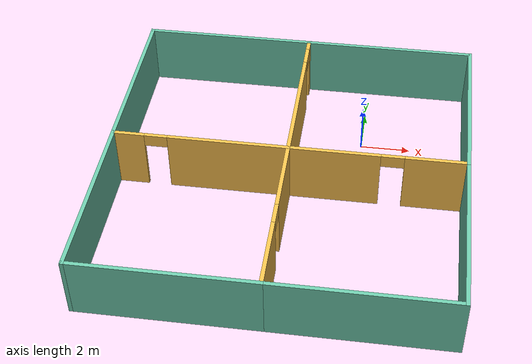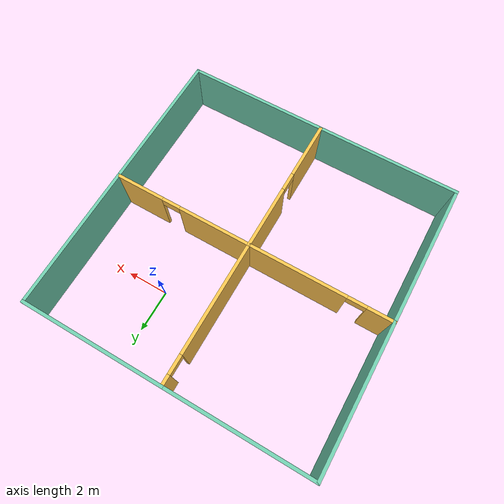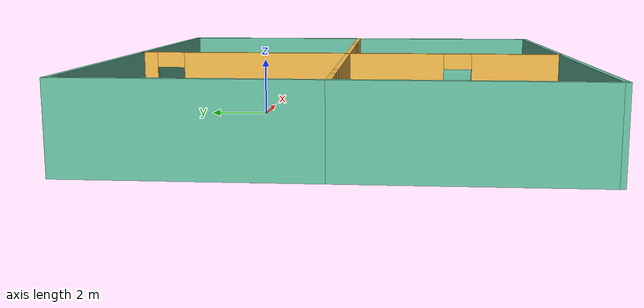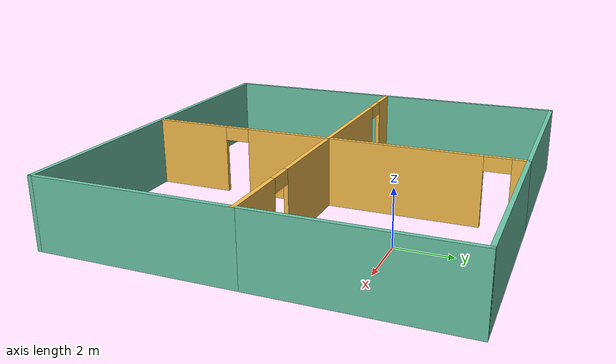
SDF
<?xml version='1.0'?>
<sdf version='1.7'>
  <model name='plane_5'>
    <pose>-2.65042 -3.20867 0 0 -0 0</pose>
    <link name='Wall_10'>
      <collision name='Wall_10_Collision'>
        <geometry>
          <box>
            <size>7 0.15 2.5</size>
          </box>
        </geometry>
        <pose>0 0 1.25 0 -0 0</pose>
      </collision>
      <visual name='Wall_10_Visual'>
        <pose>0 0 1.25 0 -0 0</pose>
        <geometry>
          <box>
            <size>7 0.15 2.5</size>
          </box>
        </geometry>
        <material>
          <script>
            <uri>file://media/materials/scripts/gazebo.material</uri>
            <name>Gazebo/Grey</name>
          </script>
          <ambient>0.435294 0.796078 0.67451 1</ambient>
        </material>
        <meta>
          <layer>0</layer>
        </meta>
      </visual>
      <pose>3.425 -6.85 0 0 -0 3.14159</pose>
    </link>
    <link name='Wall_12'>
      <collision name='Wall_12_Collision'>
        <geometry>
          <box>
            <size>7 0.15 2.5</size>
          </box>
        </geometry>
        <pose>0 0 1.25 0 -0 0</pose>
      </collision>
      <visual name='Wall_12_Visual'>
        <pose>0 0 1.25 0 -0 0</pose>
        <geometry>
          <box>
            <size>7 0.15 2.5</size>
          </box>
        </geometry>
        <material>
          <script>
            <uri>file://media/materials/scripts/gazebo.material</uri>
            <name>Gazebo/Grey</name>
          </script>
          <ambient>0.435294 0.796078 0.67451 1</ambient>
        </material>
        <meta>
          <layer>0</layer>
        </meta>
      </visual>
      <pose>-6.85 3.425 0 0 -0 1.5708</pose>
    </link>
    <link name='Wall_13'>
      <collision name='Wall_13_Collision'>
        <geometry>
          <box>
            <size>7 0.15 2.5</size>
          </box>
        </geometry>
        <pose>0 0 1.25 0 -0 0</pose>
      </collision>
      <visual name='Wall_13_Visual'>
        <pose>0 0 1.25 0 -0 0</pose>
        <geometry>
          <box>
            <size>7 0.15 2.5</size>
          </box>
        </geometry>
        <material>
          <script>
            <uri>file://media/materials/scripts/gazebo.material</uri>
            <name>Gazebo/Grey</name>
          </script>
          <ambient>0.435294 0.796078 0.67451 1</ambient>
        </material>
        <meta>
          <layer>0</layer>
        </meta>
      </visual>
      <pose>-3.425 6.85 0 0 -0 0</pose>
    </link>
    <link name='Wall_14'>
      <pose>0 3.425 0 0 -0 -1.5708</pose>
      <visual name='Wall_14_Visual_0'>
        <pose>-3.20236 0 1.25 0 -0 0</pose>
        <geometry>
          <box>
            <size>0.595276 0.15 2.5</size>
          </box>
        </geometry>
        <material>
          <script>
            <uri>file://media/materials/scripts/gazebo.material</uri>
            <name>Gazebo/Grey</name>
          </script>
          <ambient>1 0.764706 0.305882 1</ambient>
        </material>
        <meta>
          <layer>0</layer>
        </meta>
      </visual>
      <collision name='Wall_14_Collision_0'>
        <geometry>
          <box>
            <size>0.595276 0.15 2.5</size>
          </box>
        </geometry>
        <pose>-3.20236 0 1.25 0 -0 0</pose>
      </collision>
      <visual name='Wall_14_Visual_1'>
        <pose>0.747638 0 1.25 0 -0 0</pose>
        <geometry>
          <box>
            <size>5.50472 0.15 2.5</size>
          </box>
        </geometry>
        <material>
          <script>
            <uri>file://media/materials/scripts/gazebo.material</uri>
            <name>Gazebo/Grey</name>
          </script>
          <ambient>1 0.764706 0.305882 1</ambient>
        </material>
        <meta>
          <layer>0</layer>
        </meta>
      </visual>
      <collision name='Wall_14_Collision_1'>
        <geometry>
          <box>
            <size>5.50472 0.15 2.5</size>
          </box>
        </geometry>
        <pose>0.747638 0 1.25 0 -0 0</pose>
      </collision>
      <visual name='Wall_14_Visual_2'>
        <pose>-2.45472 0 2.25 0 -0 0</pose>
        <geometry>
          <box>
            <size>0.9 0.15 0.5</size>
          </box>
        </geometry>
        <material>
          <script>
            <uri>file://media/materials/scripts/gazebo.material</uri>
            <name>Gazebo/Grey</name>
          </script>
          <ambient>1 0.764706 0.305882 1</ambient>
        </material>
        <meta>
          <layer>0</layer>
        </meta>
      </visual>
      <collision name='Wall_14_Collision_2'>
        <geometry>
          <box>
            <size>0.9 0.15 0.5</size>
          </box>
        </geometry>
        <pose>-2.45472 0 2.25 0 -0 0</pose>
      </collision>
    </link>
    <link name='Wall_16'>
      <collision name='Wall_16_Collision'>
        <geometry>
          <box>
            <size>7 0.15 2.5</size>
          </box>
        </geometry>
        <pose>0 0 1.25 0 -0 0</pose>
      </collision>
      <visual name='Wall_16_Visual'>
        <pose>0 0 1.25 0 -0 0</pose>
        <geometry>
          <box>
            <size>7 0.15 2.5</size>
          </box>
        </geometry>
        <material>
          <script>
            <uri>file://media/materials/scripts/gazebo.material</uri>
            <name>Gazebo/Grey</name>
          </script>
          <ambient>0.435294 0.796078 0.67451 1</ambient>
        </material>
        <meta>
          <layer>0</layer>
        </meta>
      </visual>
      <pose>3.425 6.85 0 0 -0 0</pose>
    </link>
    <link name='Wall_17'>
      <collision name='Wall_17_Collision'>
        <geometry>
          <box>
            <size>7 0.15 2.5</size>
          </box>
        </geometry>
        <pose>0 0 1.25 0 -0 0</pose>
      </collision>
      <visual name='Wall_17_Visual'>
        <pose>0 0 1.25 0 -0 0</pose>
        <geometry>
          <box>
            <size>7 0.15 2.5</size>
          </box>
        </geometry>
        <material>
          <script>
            <uri>file://media/materials/scripts/gazebo.material</uri>
            <name>Gazebo/Grey</name>
          </script>
          <ambient>0.435294 0.796078 0.67451 1</ambient>
        </material>
        <meta>
          <layer>0</layer>
        </meta>
      </visual>
      <pose>6.85 3.425 0 0 -0 -1.5708</pose>
    </link>
    <link name='Wall_3'>
      <collision name='Wall_3_Collision'>
        <geometry>
          <box>
            <size>7 0.15 2.5</size>
          </box>
        </geometry>
        <pose>0 0 1.25 0 -0 0</pose>
      </collision>
      <visual name='Wall_3_Visual'>
        <pose>0 0 1.25 0 -0 0</pose>
        <geometry>
          <box>
            <size>7 0.15 2.5</size>
          </box>
        </geometry>
        <material>
          <script>
            <uri>file://media/materials/scripts/gazebo.material</uri>
            <name>Gazebo/Grey</name>
          </script>
          <ambient>0.435294 0.796078 0.67451 1</ambient>
        </material>
        <meta>
          <layer>0</layer>
        </meta>
      </visual>
      <pose>-6.85 -3.425 0 0 -0 1.5708</pose>
    </link>
    <link name='Wall_4'>
      <pose>-3.425 -0 0 0 -0 0</pose>
      <visual name='Wall_4_Visual_0'>
        <pose>-2.84341 0 1.25 0 -0 0</pose>
        <geometry>
          <box>
            <size>1.31317 0.15 2.5</size>
          </box>
        </geometry>
        <material>
          <script>
            <uri>file://media/materials/scripts/gazebo.material</uri>
            <name>Gazebo/Grey</name>
          </script>
          <ambient>1 0.764706 0.305882 1</ambient>
        </material>
        <meta>
          <layer>0</layer>
        </meta>
      </visual>
      <collision name='Wall_4_Collision_0'>
        <geometry>
          <box>
            <size>1.31317 0.15 2.5</size>
          </box>
        </geometry>
        <pose>-2.84341 0 1.25 0 -0 0</pose>
      </collision>
      <visual name='Wall_4_Visual_1'>
        <pose>1.10659 0 1.25 0 -0 0</pose>
        <geometry>
          <box>
            <size>4.78683 0.15 2.5</size>
          </box>
        </geometry>
        <material>
          <script>
            <uri>file://media/materials/scripts/gazebo.material</uri>
            <name>Gazebo/Grey</name>
          </script>
          <ambient>1 0.764706 0.305882 1</ambient>
        </material>
        <meta>
          <layer>0</layer>
        </meta>
      </visual>
      <collision name='Wall_4_Collision_1'>
        <geometry>
          <box>
            <size>4.78683 0.15 2.5</size>
          </box>
        </geometry>
        <pose>1.10659 0 1.25 0 -0 0</pose>
      </collision>
      <visual name='Wall_4_Visual_2'>
        <pose>-1.73683 0 2.25 0 -0 0</pose>
        <geometry>
          <box>
            <size>0.9 0.15 0.5</size>
          </box>
        </geometry>
        <material>
          <script>
            <uri>file://media/materials/scripts/gazebo.material</uri>
            <name>Gazebo/Grey</name>
          </script>
          <ambient>1 0.764706 0.305882 1</ambient>
        </material>
        <meta>
          <layer>0</layer>
        </meta>
      </visual>
      <collision name='Wall_4_Collision_2'>
        <geometry>
          <box>
            <size>0.9 0.15 0.5</size>
          </box>
        </geometry>
        <pose>-1.73683 0 2.25 0 -0 0</pose>
      </collision>
    </link>
    <link name='Wall_5'>
      <pose>0 -3.425 0 0 -0 -1.5708</pose>
      <visual name='Wall_5_Visual_0'>
        <pose>-1.90912 0 1.25 0 -0 0</pose>
        <geometry>
          <box>
            <size>3.18176 0.15 2.5</size>
          </box>
        </geometry>
        <material>
          <script>
            <uri>file://media/materials/scripts/gazebo.material</uri>
            <name>Gazebo/Grey</name>
          </script>
          <ambient>1 0.764706 0.305882 1</ambient>
        </material>
        <meta>
          <layer>0</layer>
        </meta>
      </visual>
      <collision name='Wall_5_Collision_0'>
        <geometry>
          <box>
            <size>3.18176 0.15 2.5</size>
          </box>
        </geometry>
        <pose>-1.90912 0 1.25 0 -0 0</pose>
      </collision>
      <visual name='Wall_5_Visual_1'>
        <pose>2.04088 0 1.25 0 -0 0</pose>
        <geometry>
          <box>
            <size>2.91824 0.15 2.5</size>
          </box>
        </geometry>
        <material>
          <script>
            <uri>file://media/materials/scripts/gazebo.material</uri>
            <name>Gazebo/Grey</name>
          </script>
          <ambient>1 0.764706 0.305882 1</ambient>
        </material>
        <meta>
          <layer>0</layer>
        </meta>
      </visual>
      <collision name='Wall_5_Collision_1'>
        <geometry>
          <box>
            <size>2.91824 0.15 2.5</size>
          </box>
        </geometry>
        <pose>2.04088 0 1.25 0 -0 0</pose>
      </collision>
      <visual name='Wall_5_Visual_2'>
        <pose>0.131759 0 2.25 0 -0 0</pose>
        <geometry>
          <box>
            <size>0.9 0.15 0.5</size>
          </box>
        </geometry>
        <material>
          <script>
            <uri>file://media/materials/scripts/gazebo.material</uri>
            <name>Gazebo/Grey</name>
          </script>
          <ambient>1 0.764706 0.305882 1</ambient>
        </material>
        <meta>
          <layer>0</layer>
        </meta>
      </visual>
      <collision name='Wall_5_Collision_2'>
        <geometry>
          <box>
            <size>0.9 0.15 0.5</size>
          </box>
        </geometry>
        <pose>0.131759 0 2.25 0 -0 0</pose>
      </collision>
    </link>
    <link name='Wall_6'>
      <collision name='Wall_6_Collision'>
        <geometry>
          <box>
            <size>7 0.15 2.5</size>
          </box>
        </geometry>
        <pose>0 0 1.25 0 -0 0</pose>
      </collision>
      <visual name='Wall_6_Visual'>
        <pose>0 0 1.25 0 -0 0</pose>
        <geometry>
          <box>
            <size>7 0.15 2.5</size>
          </box>
        </geometry>
        <material>
          <script>
            <uri>file://media/materials/scripts/gazebo.material</uri>
            <name>Gazebo/Grey</name>
          </script>
          <ambient>0.435294 0.796078 0.67451 1</ambient>
        </material>
        <meta>
          <layer>0</layer>
        </meta>
      </visual>
      <pose>-3.425 -6.85 0 0 -0 3.14159</pose>
    </link>
    <link name='Wall_8'>
      <pose>3.425 -0 0 0 -0 0</pose>
      <visual name='Wall_8_Visual_0'>
        <pose>-1.69058 0 1.25 0 -0 0</pose>
        <geometry>
          <box>
            <size>3.61884 0.15 2.5</size>
          </box>
        </geometry>
        <material>
          <script>
            <uri>file://media/materials/scripts/gazebo.material</uri>
            <name>Gazebo/Grey</name>
          </script>
          <ambient>1 0.764706 0.305882 1</ambient>
        </material>
        <meta>
          <layer>0</layer>
        </meta>
      </visual>
      <collision name='Wall_8_Collision_0'>
        <geometry>
          <box>
            <size>3.61884 0.15 2.5</size>
          </box>
        </geometry>
        <pose>-1.69058 0 1.25 0 -0 0</pose>
      </collision>
      <visual name='Wall_8_Visual_1'>
        <pose>2.25942 0 1.25 0 -0 0</pose>
        <geometry>
          <box>
            <size>2.48116 0.15 2.5</size>
          </box>
        </geometry>
        <material>
          <script>
            <uri>file://media/materials/scripts/gazebo.material</uri>
            <name>Gazebo/Grey</name>
          </script>
          <ambient>1 0.764706 0.305882 1</ambient>
        </material>
        <meta>
          <layer>0</layer>
        </meta>
      </visual>
      <collision name='Wall_8_Collision_1'>
        <geometry>
          <box>
            <size>2.48116 0.15 2.5</size>
          </box>
        </geometry>
        <pose>2.25942 0 1.25 0 -0 0</pose>
      </collision>
      <visual name='Wall_8_Visual_2'>
        <pose>0.568839 0 2.25 0 -0 0</pose>
        <geometry>
          <box>
            <size>0.9 0.15 0.5</size>
          </box>
        </geometry>
        <material>
          <script>
            <uri>file://media/materials/scripts/gazebo.material</uri>
            <name>Gazebo/Grey</name>
          </script>
          <ambient>1 0.764706 0.305882 1</ambient>
        </material>
        <meta>
          <layer>0</layer>
        </meta>
      </visual>
      <collision name='Wall_8_Collision_2'>
        <geometry>
          <box>
            <size>0.9 0.15 0.5</size>
          </box>
        </geometry>
        <pose>0.568839 0 2.25 0 -0 0</pose>
      </collision>
    </link>
    <link name='Wall_9'>
      <collision name='Wall_9_Collision'>
        <geometry>
          <box>
            <size>7 0.15 2.5</size>
          </box>
        </geometry>
        <pose>0 0 1.25 0 -0 0</pose>
      </collision>
      <visual name='Wall_9_Visual'>
        <pose>0 0 1.25 0 -0 0</pose>
        <geometry>
          <box>
            <size>7 0.15 2.5</size>
          </box>
        </geometry>
        <material>
          <script>
            <uri>file://media/materials/scripts/gazebo.material</uri>
            <name>Gazebo/Grey</name>
          </script>
          <ambient>0.435294 0.796078 0.67451 1</ambient>
        </material>
        <meta>
          <layer>0</layer>
        </meta>
      </visual>
      <pose>6.85 -3.425 0 0 -0 -1.5708</pose>
    </link>
    <static>1</static>
  </model>
</sdf>
